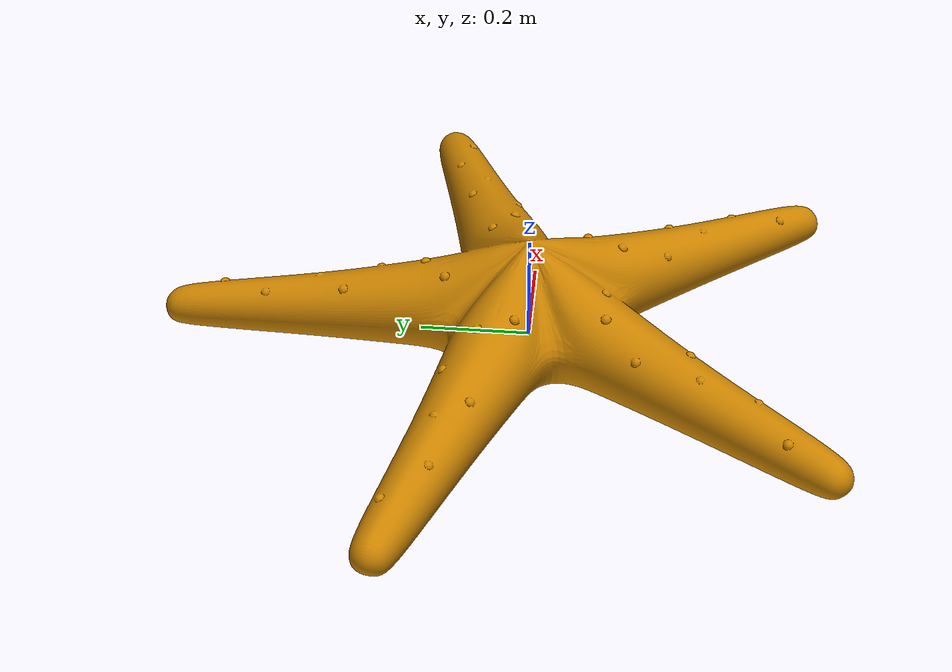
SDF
<?xml version="1.0" ?>
<sdf version="1.5">
  <model name="orange_starfish">
    <link name="orange_starfish_link">
      <static>false</static>
      <collision name="orange_starfish">
        <pose>0 0 0 0 0 0</pose>
        <geometry>
          <mesh>
            <uri>model://orange_starfish/meshes/starfish_orange.dae</uri>
            <scale>0.09 0.09 0.09</scale>
          </mesh>
        </geometry>
      </collision>

      <visual name="orange_starfish">
        <pose>0 0 0 0 0 0</pose>
        <cast_shadows>false</cast_shadows>
        <geometry>
          <mesh>
            <uri>model://orange_starfish/meshes/starfish_orange.dae</uri>
            <scale>0.09 0.09 0.09</scale>
          </mesh>
        </geometry>
      </visual>
      <kinematic>1</kinematic>
     </link>
  </model>
</sdf>
